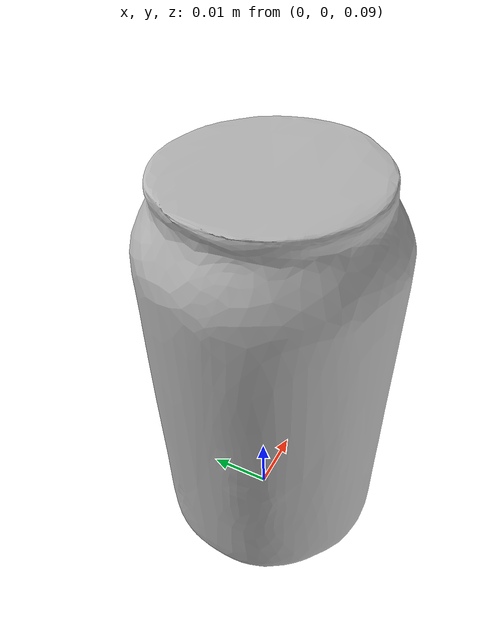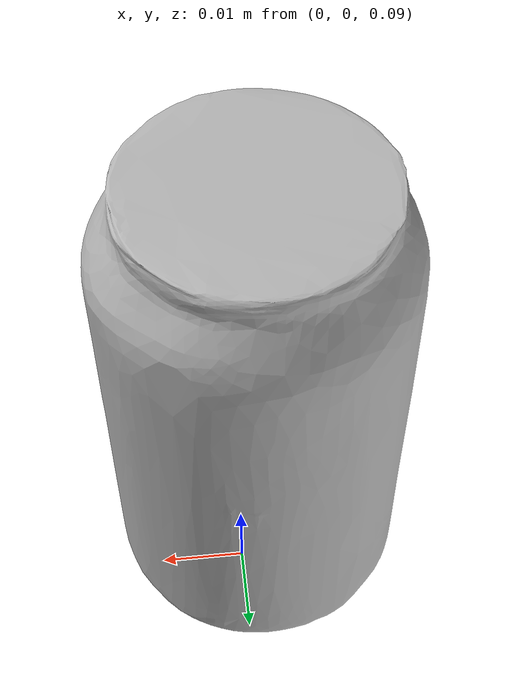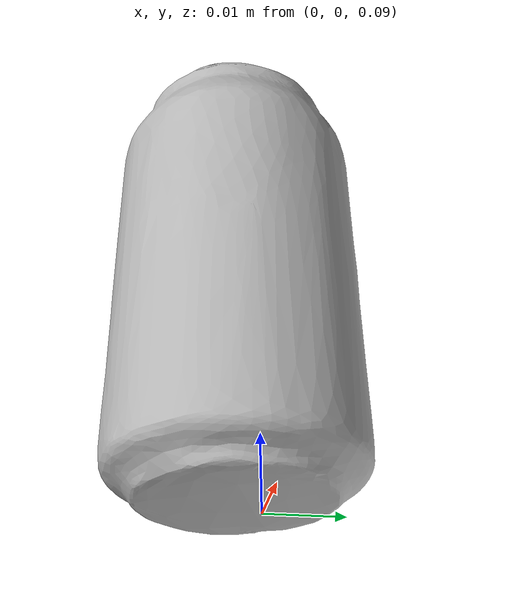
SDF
<?xml version="1.0" ?>
<sdf version="1.4">
  <model name="cokeCan">
    <static>true</static>
    <link name="link">
      <visual name="visual">
        <geometry>
          <mesh>
            <uri>model://coke_can/meshes/coke_can.dae</uri>
	    <scale>0.5 0.5 0.5</scale>
          </mesh>
        </geometry>
      </visual>
      <collision name="collision">
        <geometry>
          <mesh>
            <uri>model://coke_can/meshes/coke_can.dae</uri>
	    <scale>0.5 0.5 0.5</scale>
          </mesh>
        </geometry>
      </collision>
    </link>
  </model>
</sdf>
